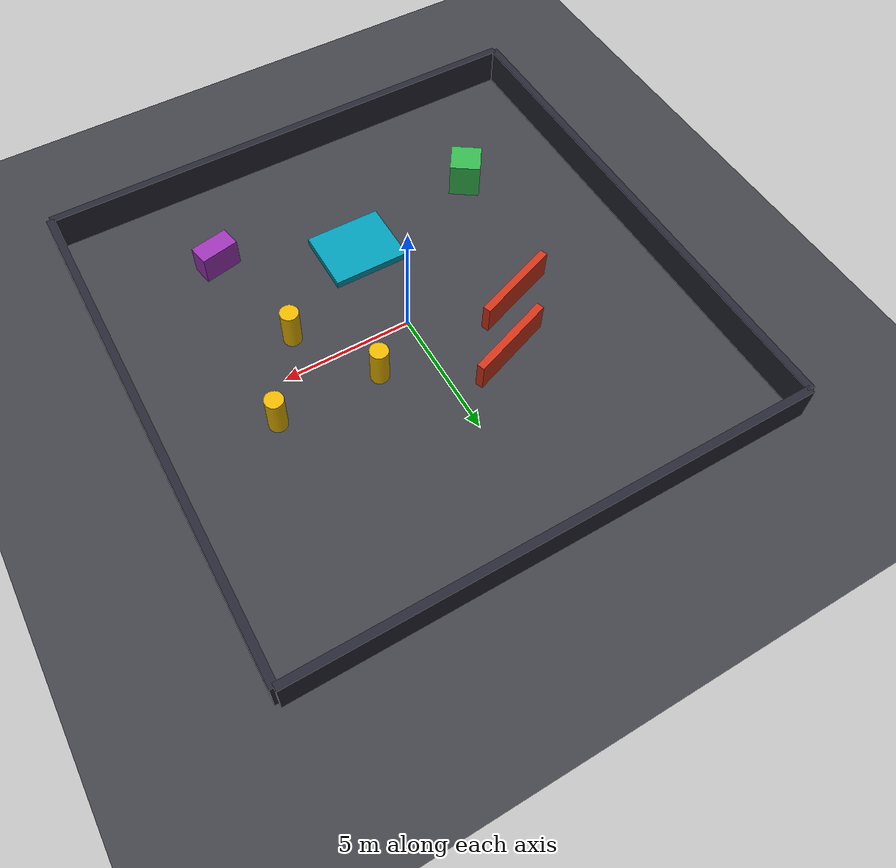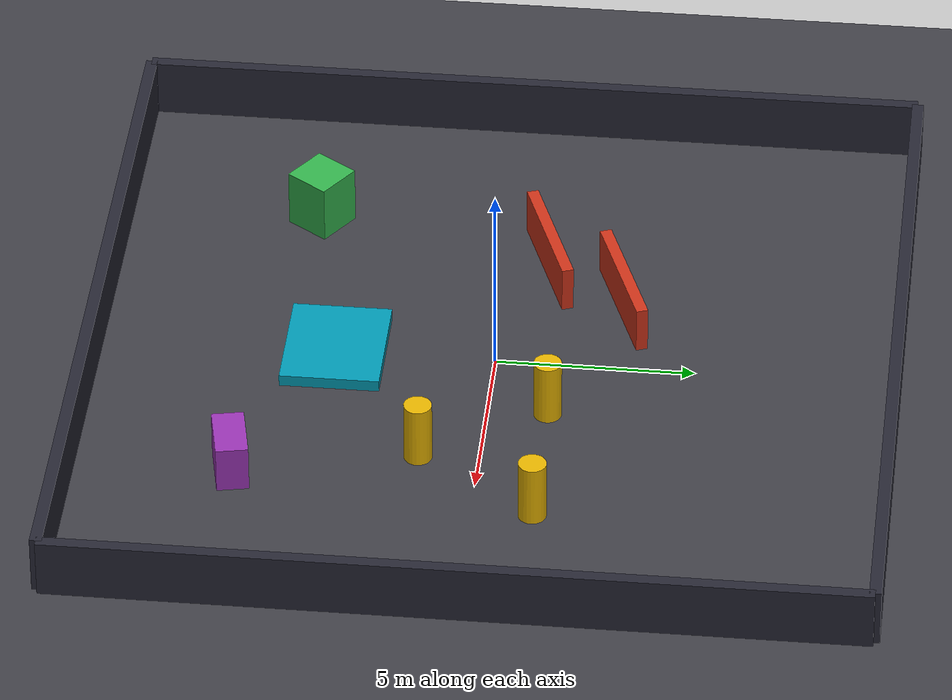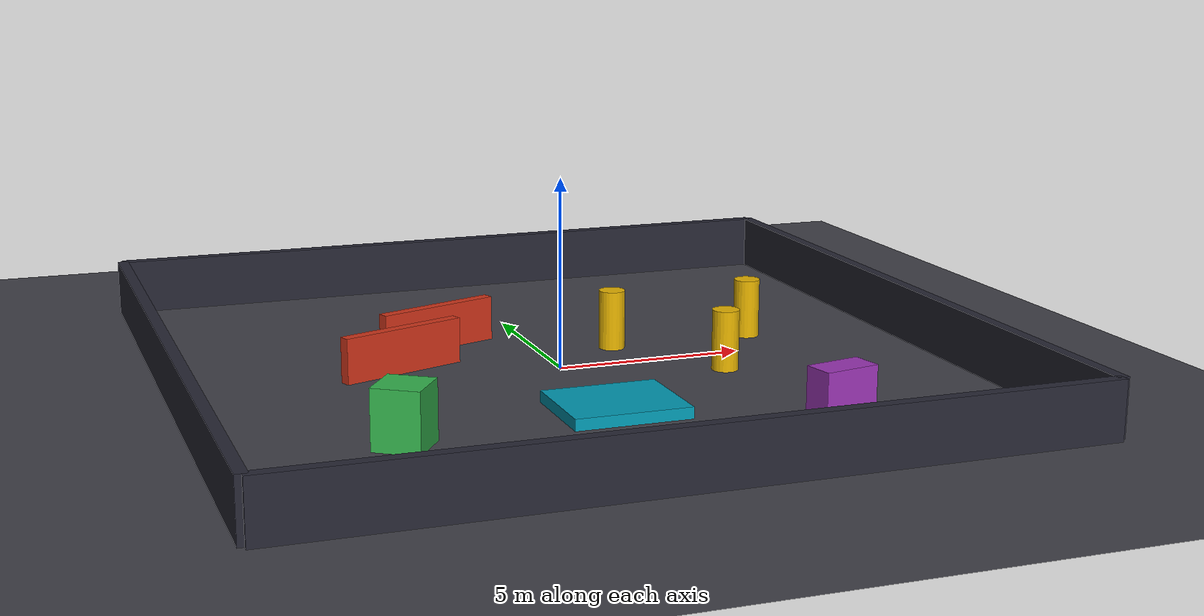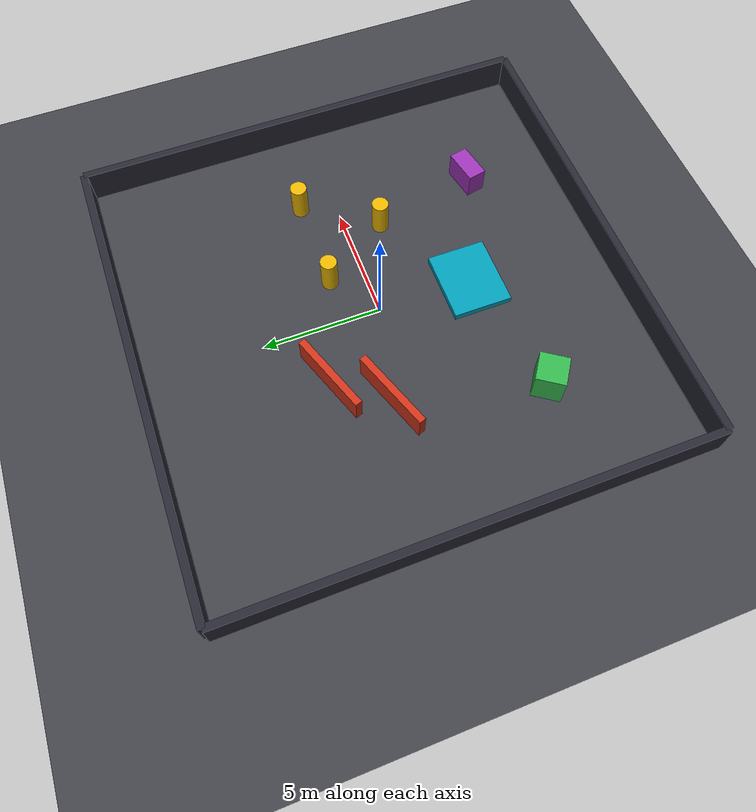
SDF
<?xml version="1.0" ?>
<sdf version="1.8">
  <world name="slalom_course_world">

    <physics name="1ms" type="ignored">
      <max_step_size>0.001</max_step_size>
      <real_time_factor>1.0</real_time_factor>
    </physics>

    <!-- Essential Systems Plugins -->
    <plugin filename="gz-sim-physics-system" name="gz::sim::systems::Physics"/>
    <plugin filename="gz-sim-user-commands-system" name="gz::sim::systems::UserCommands"/>
    <plugin filename="gz-sim-scene-broadcaster-system" name="gz::sim::systems::SceneBroadcaster"/>
    <plugin filename="gz-sim-sensors-system" name="gz::sim::systems::Sensors">
      <render_engine>ogre2</render_engine>
    </plugin>

    <!-- Directional Sun Light -->
    <light type="directional" name="sun">
      <cast_shadows>true</cast_shadows>
      <pose>0 0 12 0 0 0</pose>
      <diffuse>0.95 0.95 0.95 1</diffuse>
      <specular>0.3 0.3 0.3 1</specular>
      <direction>-0.5 0.2 -0.8</direction>
    </light>

    <!-- Ground Plane (Dark Asphalt Finish) -->
    <model name="ground_plane">
      <static>true</static>
      <link name="link">
        <collision name="collision">
          <geometry><plane><normal>0 0 1</normal><size>40 40</size></plane></geometry>
        </collision>
        <visual name="visual">
          <geometry><plane><normal>0 0 1</normal><size>40 40</size></plane></geometry>
          <material>
            <ambient>0.25 0.25 0.28 1</ambient>
            <diffuse>0.25 0.25 0.28 1</diffuse>
          </material>
        </visual>
      </link>
    </model>

    <!-- ARENA ENCLOSURE (20m x 20m Outer Perimeter) -->
    <model name="boundary_north">
      <pose>0 10.0 0.75 0 0 0</pose>
      <static>true</static>
      <link name="link">
        <collision name="col"><geometry><box><size>20.0 0.3 1.5</size></box></geometry></collision>
        <visual name="vis"><geometry><box><size>20.0 0.3 1.5</size></box></geometry><material><ambient>0.15 0.15 0.2 1</ambient><diffuse>0.15 0.15 0.2 1</diffuse></material></visual>
      </link>
    </model>

    <model name="boundary_south">
      <pose>0 -10.0 0.75 0 0 0</pose>
      <static>true</static>
      <link name="link">
        <collision name="col"><geometry><box><size>20.0 0.3 1.5</size></box></geometry></collision>
        <visual name="vis"><geometry><box><size>20.0 0.3 1.5</size></box></geometry><material><ambient>0.15 0.15 0.2 1</ambient><diffuse>0.15 0.15 0.2 1</diffuse></material></visual>
      </link>
    </model>

    <model name="boundary_east">
      <pose>10.0 0 0.75 0 0 0</pose>
      <static>true</static>
      <link name="link">
        <collision name="col"><geometry><box><size>0.3 20.0 1.5</size></box></geometry></collision>
        <visual name="vis"><geometry><box><size>0.3 20.0 1.5</size></box></geometry><material><ambient>0.15 0.15 0.2 1</ambient><diffuse>0.15 0.15 0.2 1</diffuse></material></visual>
      </link>
    </model>

    <model name="boundary_west">
      <pose>-10.0 0 0.75 0 0 0</pose>
      <static>true</static>
      <link name="link">
        <collision name="col"><geometry><box><size>0.3 20.0 1.5</size></box></geometry></collision>
        <visual name="vis"><geometry><box><size>0.3 20.0 1.5</size></box></geometry><material><ambient>0.15 0.15 0.2 1</ambient><diffuse>0.15 0.15 0.2 1</diffuse></material></visual>
      </link>
    </model>

    <!-- SECTION 1: SLALOM COURSE (CYLINDERS) -->
    <model name="slalom_pillar_1">
      <pose>2.0 1.5 0.8 0 0 0</pose>
      <static>true</static>
      <link name="link">
        <collision name="col"><geometry><cylinder><radius>0.35</radius><length>1.6</length></cylinder></geometry></collision>
        <visual name="vis"><geometry><cylinder><radius>0.35</radius><length>1.6</length></cylinder></geometry><material><ambient>0.9 0.7 0.0 1</ambient><diffuse>0.9 0.7 0.0 1</diffuse></material></visual>
      </link>
    </model>

    <model name="slalom_pillar_2">
      <pose>4.0 -1.5 0.8 0 0 0</pose>
      <static>true</static>
      <link name="link">
        <collision name="col"><geometry><cylinder><radius>0.35</radius><length>1.6</length></cylinder></geometry></collision>
        <visual name="vis"><geometry><cylinder><radius>0.35</radius><length>1.6</length></cylinder></geometry><material><ambient>0.9 0.7 0.0 1</ambient><diffuse>0.9 0.7 0.0 1</diffuse></material></visual>
      </link>
    </model>

    <model name="slalom_pillar_3">
      <pose>6.0 1.5 0.8 0 0 0</pose>
      <static>true</static>
      <link name="link">
        <collision name="col"><geometry><cylinder><radius>0.35</radius><length>1.6</length></cylinder></geometry></collision>
        <visual name="vis"><geometry><cylinder><radius>0.35</radius><length>1.6</length></cylinder></geometry><material><ambient>0.9 0.7 0.0 1</ambient><diffuse>0.9 0.7 0.0 1</diffuse></material></visual>
      </link>
    </model>

    <!-- SECTION 2: CHICANE / S-BEND WALL BARRIERS -->
    <model name="chicane_left">
      <pose>-2.5 3.0 0.6 0 0 0.35</pose>
      <static>true</static>
      <link name="link">
        <collision name="col"><geometry><box><size>3.5 0.3 1.2</size></box></geometry></collision>
        <visual name="vis"><geometry><box><size>3.5 0.3 1.2</size></box></geometry><material><ambient>0.8 0.2 0.1 1</ambient><diffuse>0.8 0.2 0.1 1</diffuse></material></visual>
      </link>
    </model>

    <model name="chicane_right">
      <pose>-4.0 1.0 0.6 0 0 0.35</pose>
      <static>true</static>
      <link name="link">
        <collision name="col"><geometry><box><size>3.5 0.3 1.2</size></box></geometry></collision>
        <visual name="vis"><geometry><box><size>3.5 0.3 1.2</size></box></geometry><material><ambient>0.8 0.2 0.1 1</ambient><diffuse>0.8 0.2 0.1 1</diffuse></material></visual>
      </link>
    </model>

    <!-- SECTION 3: CENTER SPEED-BUMP PLATFORM -->
    <model name="center_platform">
      <pose>0.0 -4.0 0.15 0 0 0</pose>
      <static>true</static>
      <link name="link">
        <collision name="col"><geometry><box><size>3.0 2.5 0.3</size></box></geometry></collision>
        <visual name="vis"><geometry><box><size>3.0 2.5 0.3</size></box></geometry><material><ambient>0.0 0.6 0.7 1</ambient><diffuse>0.0 0.6 0.7 1</diffuse></material></visual>
      </link>
    </model>

    <!-- SECTION 4: SCATTERED PERIPHERAL OBSTACLES -->
    <model name="block_southwest">
      <pose>-5.5 -5.0 0.75 0 0 -0.6</pose>
      <static>true</static>
      <link name="link">
        <collision name="col"><geometry><box><size>1.2 1.2 1.5</size></box></geometry></collision>
        <visual name="vis"><geometry><box><size>1.2 1.2 1.5</size></box></geometry><material><ambient>0.2 0.7 0.3 1</ambient><diffuse>0.2 0.7 0.3 1</diffuse></material></visual>
      </link>
    </model>

    <model name="block_southeast">
      <pose>5.0 -6.0 0.6 0 0 0.2</pose>
      <static>true</static>
      <link name="link">
        <collision name="col"><geometry><box><size>1.5 0.8 1.2</size></box></geometry></collision>
        <visual name="vis"><geometry><box><size>1.5 0.8 1.2</size></box></geometry><material><ambient>0.6 0.2 0.7 1</ambient><diffuse>0.6 0.2 0.7 1</diffuse></material></visual>
      </link>
    </model>

  </world>
</sdf>
